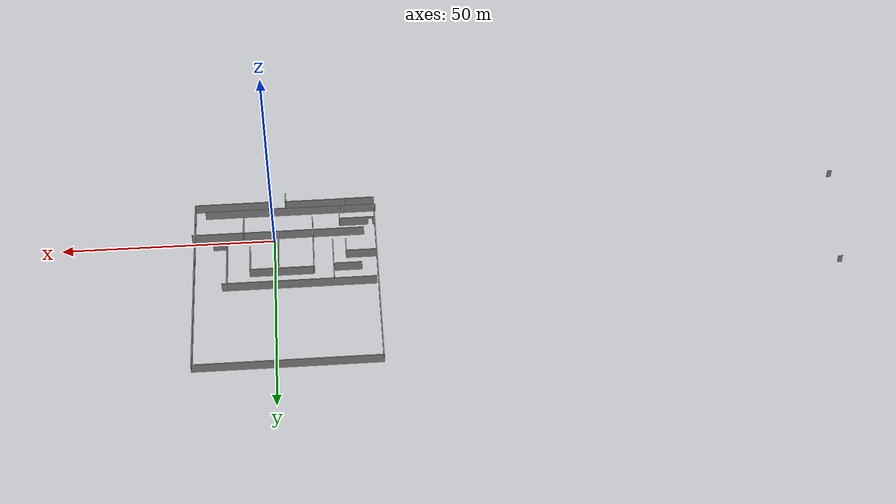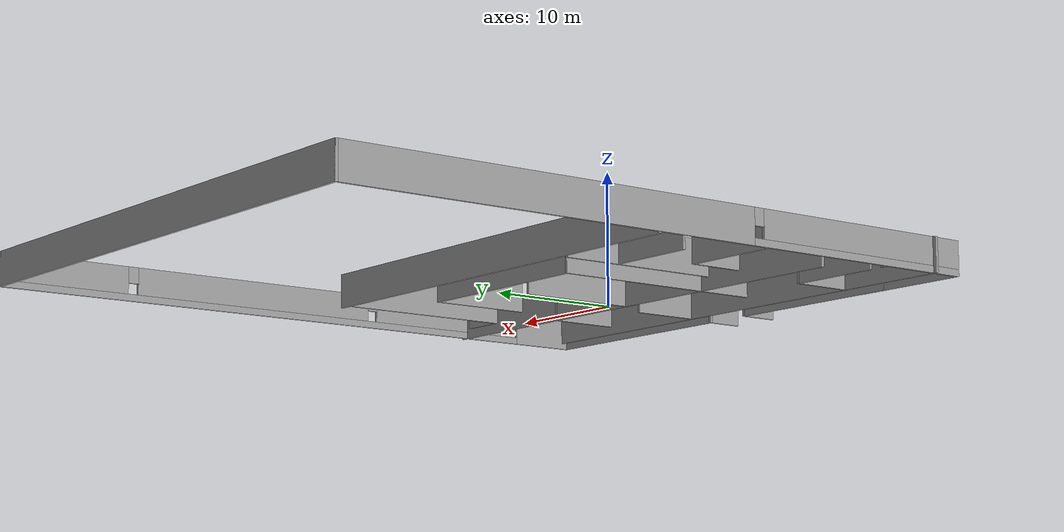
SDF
<?xml version='1.0'?>
<sdf version='1.4'>
  <model name='Gmapping-World'>
    <link name='Door_0'>
      <collision name='Door_0_Collision'>
        <geometry>
          <box>
            <size>1 0.2 2</size>
          </box>
        </geometry>
        <pose>0 0 1 0 -0 0</pose>
      </collision>
      <visual name='Door_0_Visual'>
        <pose>0 0 1 0 -0 0</pose>
        <geometry>
          <box>
            <size>1 0.2 2</size>
          </box>
        </geometry>
        <material>
          <script>
            <uri>file://media/materials/scripts/gazebo.material</uri>
            <name>Gazebo/Grey</name>
          </script>
        </material>
      </visual>
      <velocity_decay>
        <linear>0</linear>
        <angular>0</angular>
      </velocity_decay>
      <pose>-136.279 -12.4806 0 0 -0 0</pose>
    </link>
    <link name='Door_1'>
      <collision name='Door_1_Collision'>
        <geometry>
          <box>
            <size>1 0.2 2</size>
          </box>
        </geometry>
        <pose>0 0 1 0 -0 0</pose>
      </collision>
      <visual name='Door_1_Visual'>
        <pose>0 0 1 0 -0 0</pose>
        <geometry>
          <box>
            <size>1 0.2 2</size>
          </box>
        </geometry>
        <material>
          <script>
            <uri>file://media/materials/scripts/gazebo.material</uri>
            <name>Gazebo/Grey</name>
          </script>
        </material>
      </visual>
      <velocity_decay>
        <linear>0</linear>
        <angular>0</angular>
      </velocity_decay>
      <pose>-132.271 16.2455 0 0 -0 0</pose>
    </link>
    <link name='Wall_11'>
      <collision name='Wall_11_Collision'>
        <geometry>
          <box>
            <size>14.5114 0.2 2.5</size>
          </box>
        </geometry>
        <pose>0 0 1.25 0 -0 0</pose>
      </collision>
      <visual name='Wall_11_Visual'>
        <pose>0 0 1.25 0 -0 0</pose>
        <geometry>
          <box>
            <size>14.5114 0.2 2.5</size>
          </box>
        </geometry>
        <material>
          <script>
            <uri>file://media/materials/scripts/gazebo.material</uri>
            <name>Gazebo/Grey</name>
          </script>
        </material>
      </visual>
      <velocity_decay>
        <linear>0</linear>
        <angular>0</angular>
      </velocity_decay>
      <pose>-9.95283 -10.8803 0 0 -0 0</pose>
    </link>
    <link name='Wall_12'>
      <collision name='Wall_12_Collision'>
        <geometry>
          <box>
            <size>2.93125 0.2 2.5</size>
          </box>
        </geometry>
        <pose>0 0 1.25 0 -0 0</pose>
      </collision>
      <visual name='Wall_12_Visual'>
        <pose>0 0 1.25 0 -0 0</pose>
        <geometry>
          <box>
            <size>2.93125 0.2 2.5</size>
          </box>
        </geometry>
        <material>
          <script>
            <uri>file://media/materials/scripts/gazebo.material</uri>
            <name>Gazebo/Grey</name>
          </script>
        </material>
      </visual>
      <velocity_decay>
        <linear>0</linear>
        <angular>0</angular>
      </velocity_decay>
      <pose>-2.79714 -12.2459 0 0 0 -1.5708</pose>
    </link>
    <link name='Wall_13'>
      <collision name='Wall_13_Collision'>
        <geometry>
          <box>
            <size>0.21 0.2 2.5</size>
          </box>
        </geometry>
        <pose>0 0 1.25 0 -0 0</pose>
      </collision>
      <visual name='Wall_13_Visual'>
        <pose>0 0 1.25 0 -0 0</pose>
        <geometry>
          <box>
            <size>0.21 0.2 2.5</size>
          </box>
        </geometry>
        <material>
          <script>
            <uri>file://media/materials/scripts/gazebo.material</uri>
            <name>Gazebo/Grey</name>
          </script>
        </material>
      </visual>
      <velocity_decay>
        <linear>0</linear>
        <angular>0</angular>
      </velocity_decay>
      <pose>-2.79214 -13.6115 0 0 -0 0</pose>
    </link>
    <link name='Wall_15'>
      <collision name='Wall_15_Collision'>
        <geometry>
          <box>
            <size>2.82063 0.2 2.5</size>
          </box>
        </geometry>
        <pose>0 0 1.25 0 -0 0</pose>
      </collision>
      <visual name='Wall_15_Visual'>
        <pose>0 0 1.25 0 -0 0</pose>
        <geometry>
          <box>
            <size>2.82063 0.2 2.5</size>
          </box>
        </geometry>
        <material>
          <script>
            <uri>file://media/materials/scripts/gazebo.material</uri>
            <name>Gazebo/Grey</name>
          </script>
        </material>
      </visual>
      <velocity_decay>
        <linear>0</linear>
        <angular>0</angular>
      </velocity_decay>
      <pose>1.07123 -12.2623 0 0 -0 1.5708</pose>
    </link>
    <link name='Wall_16'>
      <collision name='Wall_16_Collision'>
        <geometry>
          <box>
            <size>17.8893 0.2 2.5</size>
          </box>
        </geometry>
        <pose>0 0 1.25 0 -0 0</pose>
      </collision>
      <visual name='Wall_16_Visual'>
        <pose>0 0 1.25 0 -0 0</pose>
        <geometry>
          <box>
            <size>17.8893 0.2 2.5</size>
          </box>
        </geometry>
        <material>
          <script>
            <uri>file://media/materials/scripts/gazebo.material</uri>
            <name>Gazebo/Grey</name>
          </script>
        </material>
      </visual>
      <velocity_decay>
        <linear>0</linear>
        <angular>0</angular>
      </velocity_decay>
      <pose>9.91586 -10.952 0 0 -0 0</pose>
    </link>
    <link name='Wall_17'>
      <pose>18.7605 14.1542 0 0 -0 1.5708</pose>
      <visual name='Wall_17_Visual_0'>
        <pose>-22.5576 0 1.25 0 -0 0</pose>
        <geometry>
          <box>
            <size>5.29723 0.2 2.5</size>
          </box>
        </geometry>
        <material>
          <script>
            <uri>file://media/materials/scripts/gazebo.material</uri>
            <name>Gazebo/Grey</name>
          </script>
        </material>
      </visual>
      <collision name='Wall_17_Collision_0'>
        <geometry>
          <box>
            <size>5.29723 0.2 2.5</size>
          </box>
        </geometry>
        <pose>-22.5576 0 1.25 0 -0 0</pose>
      </collision>
      <visual name='Wall_17_Visual_1'>
        <pose>2.64861 0 0.25 0 -0 0</pose>
        <geometry>
          <box>
            <size>45.1152 0.2 0.5</size>
          </box>
        </geometry>
        <material>
          <script>
            <uri>file://media/materials/scripts/gazebo.material</uri>
            <name>Gazebo/Grey</name>
          </script>
        </material>
      </visual>
      <collision name='Wall_17_Collision_1'>
        <geometry>
          <box>
            <size>45.1152 0.2 0.5</size>
          </box>
        </geometry>
        <pose>2.64861 0 0.25 0 -0 0</pose>
      </collision>
      <visual name='Wall_17_Visual_2'>
        <pose>-12.7172 0 1.5 0 -0 0</pose>
        <geometry>
          <box>
            <size>12.7836 0.2 2</size>
          </box>
        </geometry>
        <material>
          <script>
            <uri>file://media/materials/scripts/gazebo.material</uri>
            <name>Gazebo/Grey</name>
          </script>
        </material>
      </visual>
      <collision name='Wall_17_Collision_2'>
        <geometry>
          <box>
            <size>12.7836 0.2 2</size>
          </box>
        </geometry>
        <pose>-12.7172 0 1.5 0 -0 0</pose>
      </collision>
      <visual name='Wall_17_Visual_3'>
        <pose>4.42941 0 1.5 0 -0 0</pose>
        <geometry>
          <box>
            <size>19.9095 0.2 2</size>
          </box>
        </geometry>
        <material>
          <script>
            <uri>file://media/materials/scripts/gazebo.material</uri>
            <name>Gazebo/Grey</name>
          </script>
        </material>
      </visual>
      <collision name='Wall_17_Collision_3'>
        <geometry>
          <box>
            <size>19.9095 0.2 2</size>
          </box>
        </geometry>
        <pose>4.42941 0 1.5 0 -0 0</pose>
      </collision>
      <visual name='Wall_17_Visual_4'>
        <pose>20.1952 0 1.5 0 -0 0</pose>
        <geometry>
          <box>
            <size>10.0221 0.2 2</size>
          </box>
        </geometry>
        <material>
          <script>
            <uri>file://media/materials/scripts/gazebo.material</uri>
            <name>Gazebo/Grey</name>
          </script>
        </material>
      </visual>
      <collision name='Wall_17_Collision_4'>
        <geometry>
          <box>
            <size>10.0221 0.2 2</size>
          </box>
        </geometry>
        <pose>20.1952 0 1.5 0 -0 0</pose>
      </collision>
      <visual name='Wall_17_Visual_5'>
        <pose>-19.509 0 1.9 0 -0 0</pose>
        <geometry>
          <box>
            <size>0.8 0.2 1.2</size>
          </box>
        </geometry>
        <material>
          <script>
            <uri>file://media/materials/scripts/gazebo.material</uri>
            <name>Gazebo/Grey</name>
          </script>
        </material>
      </visual>
      <collision name='Wall_17_Collision_5'>
        <geometry>
          <box>
            <size>0.8 0.2 1.2</size>
          </box>
        </geometry>
        <pose>-19.509 0 1.9 0 -0 0</pose>
      </collision>
      <visual name='Wall_17_Visual_6'>
        <pose>-5.92533 0 1.9 0 -0 0</pose>
        <geometry>
          <box>
            <size>0.8 0.2 1.2</size>
          </box>
        </geometry>
        <material>
          <script>
            <uri>file://media/materials/scripts/gazebo.material</uri>
            <name>Gazebo/Grey</name>
          </script>
        </material>
      </visual>
      <collision name='Wall_17_Collision_6'>
        <geometry>
          <box>
            <size>0.8 0.2 1.2</size>
          </box>
        </geometry>
        <pose>-5.92533 0 1.9 0 -0 0</pose>
      </collision>
      <visual name='Wall_17_Visual_7'>
        <pose>14.7841 0 1.9 0 -0 0</pose>
        <geometry>
          <box>
            <size>0.8 0.2 1.2</size>
          </box>
        </geometry>
        <material>
          <script>
            <uri>file://media/materials/scripts/gazebo.material</uri>
            <name>Gazebo/Grey</name>
          </script>
        </material>
      </visual>
      <collision name='Wall_17_Collision_7'>
        <geometry>
          <box>
            <size>0.8 0.2 1.2</size>
          </box>
        </geometry>
        <pose>14.7841 0 1.9 0 -0 0</pose>
      </collision>
    </link>
    <link name='Wall_18'>
      <collision name='Wall_18_Collision'>
        <geometry>
          <box>
            <size>42.9412 0.2 2.5</size>
          </box>
        </geometry>
        <pose>0 0 1.25 0 -0 0</pose>
      </collision>
      <visual name='Wall_18_Visual'>
        <pose>0 0 1.25 0 -0 0</pose>
        <geometry>
          <box>
            <size>42.9412 0.2 2.5</size>
          </box>
        </geometry>
        <material>
          <script>
            <uri>file://media/materials/scripts/gazebo.material</uri>
            <name>Gazebo/Grey</name>
          </script>
        </material>
      </visual>
      <velocity_decay>
        <linear>0</linear>
        <angular>0</angular>
      </velocity_decay>
      <pose>-2.61009 39.2604 0 0 -0 3.14159</pose>
    </link>
    <link name='Wall_19'>
      <pose>-23.9807 14.1641 0 0 0 -1.5708</pose>
      <visual name='Wall_19_Visual_0'>
        <pose>-9.38521 0 1.25 0 -0 0</pose>
        <geometry>
          <box>
            <size>31.6223 0.2 2.5</size>
          </box>
        </geometry>
        <material>
          <script>
            <uri>file://media/materials/scripts/gazebo.material</uri>
            <name>Gazebo/Grey</name>
          </script>
        </material>
      </visual>
      <collision name='Wall_19_Collision_0'>
        <geometry>
          <box>
            <size>31.6223 0.2 2.5</size>
          </box>
        </geometry>
        <pose>-9.38521 0 1.25 0 -0 0</pose>
      </collision>
      <visual name='Wall_19_Visual_1'>
        <pose>15.8111 0 0.25 0 -0 0</pose>
        <geometry>
          <box>
            <size>18.7704 0.2 0.5</size>
          </box>
        </geometry>
        <material>
          <script>
            <uri>file://media/materials/scripts/gazebo.material</uri>
            <name>Gazebo/Grey</name>
          </script>
        </material>
      </visual>
      <collision name='Wall_19_Collision_1'>
        <geometry>
          <box>
            <size>18.7704 0.2 0.5</size>
          </box>
        </geometry>
        <pose>15.8111 0 0.25 0 -0 0</pose>
      </collision>
      <visual name='Wall_19_Visual_2'>
        <pose>16.2111 0 1.5 0 -0 0</pose>
        <geometry>
          <box>
            <size>17.9704 0.2 2</size>
          </box>
        </geometry>
        <material>
          <script>
            <uri>file://media/materials/scripts/gazebo.material</uri>
            <name>Gazebo/Grey</name>
          </script>
        </material>
      </visual>
      <collision name='Wall_19_Collision_2'>
        <geometry>
          <box>
            <size>17.9704 0.2 2</size>
          </box>
        </geometry>
        <pose>16.2111 0 1.5 0 -0 0</pose>
      </collision>
      <visual name='Wall_19_Visual_3'>
        <pose>6.82594 0 1.9 0 -0 0</pose>
        <geometry>
          <box>
            <size>0.8 0.2 1.2</size>
          </box>
        </geometry>
        <material>
          <script>
            <uri>file://media/materials/scripts/gazebo.material</uri>
            <name>Gazebo/Grey</name>
          </script>
        </material>
      </visual>
      <collision name='Wall_19_Collision_3'>
        <geometry>
          <box>
            <size>0.8 0.2 1.2</size>
          </box>
        </geometry>
        <pose>6.82594 0 1.9 0 -0 0</pose>
      </collision>
    </link>
    <link name='Wall_20'>
      <collision name='Wall_20_Collision'>
        <geometry>
          <box>
            <size>9.16297 0.2 2.5</size>
          </box>
        </geometry>
        <pose>0 0 1.25 0 -0 0</pose>
      </collision>
      <visual name='Wall_20_Visual'>
        <pose>0 0 1.25 0 -0 0</pose>
        <geometry>
          <box>
            <size>9.16297 0.2 2.5</size>
          </box>
        </geometry>
        <material>
          <script>
            <uri>file://media/materials/scripts/gazebo.material</uri>
            <name>Gazebo/Grey</name>
          </script>
        </material>
      </visual>
      <velocity_decay>
        <linear>0</linear>
        <angular>0</angular>
      </velocity_decay>
      <pose>-19.4992 -10.9322 0 0 -0 0</pose>
    </link>
    <link name='Wall_23'>
      <collision name='Wall_23_Collision'>
        <geometry>
          <box>
            <size>40.6614 0.2 2.5</size>
          </box>
        </geometry>
        <pose>0 0 1.25 0 -0 0</pose>
      </collision>
      <visual name='Wall_23_Visual'>
        <pose>0 0 1.25 0 -0 0</pose>
        <geometry>
          <box>
            <size>40.6614 0.2 2.5</size>
          </box>
        </geometry>
        <material>
          <script>
            <uri>file://media/materials/scripts/gazebo.material</uri>
            <name>Gazebo/Grey</name>
          </script>
        </material>
      </visual>
      <velocity_decay>
        <linear>0</linear>
        <angular>0</angular>
      </velocity_decay>
      <pose>-4.00605 -8.62745 0 0 -0 0</pose>
    </link>
    <link name='Wall_25'>
      <collision name='Wall_25_Collision'>
        <geometry>
          <box>
            <size>40.6614 0.2 2.5</size>
          </box>
        </geometry>
        <pose>0 0 1.25 0 -0 0</pose>
      </collision>
      <visual name='Wall_25_Visual'>
        <pose>0 0 1.25 0 -0 0</pose>
        <geometry>
          <box>
            <size>40.6614 0.2 2.5</size>
          </box>
        </geometry>
        <material>
          <script>
            <uri>file://media/materials/scripts/gazebo.material</uri>
            <name>Gazebo/Grey</name>
          </script>
        </material>
      </visual>
      <velocity_decay>
        <linear>0</linear>
        <angular>0</angular>
      </velocity_decay>
      <pose>-0.933032 -0.944906 0 0 -0 3.14159</pose>
    </link>
    <link name='Wall_27'>
      <collision name='Wall_27_Collision'>
        <geometry>
          <box>
            <size>5.3217 0.2 2.5</size>
          </box>
        </geometry>
        <pose>0 0 1.25 0 -0 0</pose>
      </collision>
      <visual name='Wall_27_Visual'>
        <pose>0 0 1.25 0 -0 0</pose>
        <geometry>
          <box>
            <size>5.3217 0.2 2.5</size>
          </box>
        </geometry>
        <material>
          <script>
            <uri>file://media/materials/scripts/gazebo.material</uri>
            <name>Gazebo/Grey</name>
          </script>
        </material>
      </visual>
      <velocity_decay>
        <linear>0</linear>
        <angular>0</angular>
      </velocity_decay>
      <pose>7.26169 -3.50576 0 0 0 -1.5708</pose>
    </link>
    <link name='Wall_29'>
      <collision name='Wall_29_Collision'>
        <geometry>
          <box>
            <size>5.06561 0.2 2.5</size>
          </box>
        </geometry>
        <pose>0 0 1.25 0 -0 0</pose>
      </collision>
      <visual name='Wall_29_Visual'>
        <pose>0 0 1.25 0 -0 0</pose>
        <geometry>
          <box>
            <size>5.06561 0.2 2.5</size>
          </box>
        </geometry>
        <material>
          <script>
            <uri>file://media/materials/scripts/gazebo.material</uri>
            <name>Gazebo/Grey</name>
          </script>
        </material>
      </visual>
      <velocity_decay>
        <linear>0</linear>
        <angular>0</angular>
      </velocity_decay>
      <pose>0.603478 -5.93856 0 0 -0 1.5708</pose>
    </link>
    <link name='Wall_47'>
      <collision name='Wall_47_Collision'>
        <geometry>
          <box>
            <size>35.7958 0.2 2.5</size>
          </box>
        </geometry>
        <pose>0 0 1.25 0 -0 0</pose>
      </collision>
      <visual name='Wall_47_Visual'>
        <pose>0 0 1.25 0 -0 0</pose>
        <geometry>
          <box>
            <size>35.7958 0.2 2.5</size>
          </box>
        </geometry>
        <material>
          <script>
            <uri>file://media/materials/scripts/gazebo.material</uri>
            <name>Gazebo/Grey</name>
          </script>
        </material>
      </visual>
      <velocity_decay>
        <linear>0</linear>
        <angular>0</angular>
      </velocity_decay>
      <pose>-5.6706 15.1884 0 0 -0 0</pose>
    </link>
    <link name='Wall_49'>
      <collision name='Wall_49_Collision'>
        <geometry>
          <box>
            <size>12.236 0.2 2.5</size>
          </box>
        </geometry>
        <pose>0 0 1.25 0 -0 0</pose>
      </collision>
      <visual name='Wall_49_Visual'>
        <pose>0 0 1.25 0 -0 0</pose>
        <geometry>
          <box>
            <size>12.236 0.2 2.5</size>
          </box>
        </geometry>
        <material>
          <script>
            <uri>file://media/materials/scripts/gazebo.material</uri>
            <name>Gazebo/Grey</name>
          </script>
        </material>
      </visual>
      <velocity_decay>
        <linear>0</linear>
        <angular>0</angular>
      </velocity_decay>
      <pose>-13.7373 8.65828 0 0 0 -1.5708</pose>
    </link>
    <link name='Wall_51'>
      <collision name='Wall_51_Collision'>
        <geometry>
          <box>
            <size>7.11429 0.2 2.5</size>
          </box>
        </geometry>
        <pose>0 0 1.25 0 -0 0</pose>
      </collision>
      <visual name='Wall_51_Visual'>
        <pose>0 0 1.25 0 -0 0</pose>
        <geometry>
          <box>
            <size>7.11429 0.2 2.5</size>
          </box>
        </geometry>
        <material>
          <script>
            <uri>file://media/materials/scripts/gazebo.material</uri>
            <name>Gazebo/Grey</name>
          </script>
        </material>
      </visual>
      <velocity_decay>
        <linear>0</linear>
        <angular>0</angular>
      </velocity_decay>
      <pose>-20.2674 6.48156 0 0 -0 0</pose>
    </link>
    <link name='Wall_52'>
      <collision name='Wall_52_Collision'>
        <geometry>
          <box>
            <size>4.04127 0.2 2.5</size>
          </box>
        </geometry>
        <pose>0 0 1.25 0 -0 0</pose>
      </collision>
      <visual name='Wall_52_Visual'>
        <pose>0 0 1.25 0 -0 0</pose>
        <geometry>
          <box>
            <size>4.04127 0.2 2.5</size>
          </box>
        </geometry>
        <material>
          <script>
            <uri>file://media/materials/scripts/gazebo.material</uri>
            <name>Gazebo/Grey</name>
          </script>
        </material>
      </visual>
      <velocity_decay>
        <linear>0</linear>
        <angular>0</angular>
      </velocity_decay>
      <pose>-16.8103 4.56092 0 0 0 -1.5708</pose>
    </link>
    <link name='Wall_54'>
      <collision name='Wall_54_Collision'>
        <geometry>
          <box>
            <size>12.4921 0.2 2.5</size>
          </box>
        </geometry>
        <pose>0 0 1.25 0 -0 0</pose>
      </collision>
      <visual name='Wall_54_Visual'>
        <pose>0 0 1.25 0 -0 0</pose>
        <geometry>
          <box>
            <size>12.4921 0.2 2.5</size>
          </box>
        </geometry>
        <material>
          <script>
            <uri>file://media/materials/scripts/gazebo.material</uri>
            <name>Gazebo/Grey</name>
          </script>
        </material>
      </visual>
      <velocity_decay>
        <linear>0</linear>
        <angular>0</angular>
      </velocity_decay>
      <pose>-9.12775 4.94505 0 0 -0 1.5708</pose>
    </link>
    <link name='Wall_55'>
      <collision name='Wall_55_Collision'>
        <geometry>
          <box>
            <size>15.0529 0.2 2.5</size>
          </box>
        </geometry>
        <pose>0 0 1.25 0 -0 0</pose>
      </collision>
      <visual name='Wall_55_Visual'>
        <pose>0 0 1.25 0 -0 0</pose>
        <geometry>
          <box>
            <size>15.0529 0.2 2.5</size>
          </box>
        </geometry>
        <material>
          <script>
            <uri>file://media/materials/scripts/gazebo.material</uri>
            <name>Gazebo/Grey</name>
          </script>
        </material>
      </visual>
      <velocity_decay>
        <linear>0</linear>
        <angular>0</angular>
      </velocity_decay>
      <pose>-1.70129 11.0911 0 0 -0 0</pose>
    </link>
    <link name='Wall_56'>
      <collision name='Wall_56_Collision'>
        <geometry>
          <box>
            <size>7.57647 0.2 2.5</size>
          </box>
        </geometry>
        <pose>0 0 1.25 0 -0 0</pose>
      </collision>
      <visual name='Wall_56_Visual'>
        <pose>0 0 1.25 0 -0 0</pose>
        <geometry>
          <box>
            <size>7.57647 0.2 2.5</size>
          </box>
        </geometry>
        <material>
          <script>
            <uri>file://media/materials/scripts/gazebo.material</uri>
            <name>Gazebo/Grey</name>
          </script>
        </material>
      </visual>
      <velocity_decay>
        <linear>0</linear>
        <angular>0</angular>
      </velocity_decay>
      <pose>5.72518 7.40285 0 0 0 -1.5708</pose>
    </link>
    <link name='Wall_59'>
      <collision name='Wall_59_Collision'>
        <geometry>
          <box>
            <size>13.1156 0.2 2.5</size>
          </box>
        </geometry>
        <pose>0 0 1.25 0 -0 0</pose>
      </collision>
      <visual name='Wall_59_Visual'>
        <pose>0 0 1.25 0 -0 0</pose>
        <geometry>
          <box>
            <size>13.1156 0.2 2.5</size>
          </box>
        </geometry>
        <material>
          <script>
            <uri>file://media/materials/scripts/gazebo.material</uri>
            <name>Gazebo/Grey</name>
          </script>
        </material>
      </visual>
      <velocity_decay>
        <linear>0</linear>
        <angular>0</angular>
      </velocity_decay>
      <pose>11.1367 8.45158 0 0 0 -1.5708</pose>
    </link>
    <link name='Wall_60'>
      <collision name='Wall_60_Collision'>
        <geometry>
          <box>
            <size>3.31756 0.2 2.5</size>
          </box>
        </geometry>
        <pose>0 0 1.25 0 -0 0</pose>
      </collision>
      <visual name='Wall_60_Visual'>
        <pose>0 0 1.25 0 -0 0</pose>
        <geometry>
          <box>
            <size>3.31756 0.2 2.5</size>
          </box>
        </geometry>
        <material>
          <script>
            <uri>file://media/materials/scripts/gazebo.material</uri>
            <name>Gazebo/Grey</name>
          </script>
        </material>
      </visual>
      <velocity_decay>
        <linear>0</linear>
        <angular>0</angular>
      </velocity_decay>
      <pose>12.6955 1.99379 0 0 -0 0</pose>
    </link>
    <link name='Wall_62'>
      <collision name='Wall_62_Collision'>
        <geometry>
          <box>
            <size>6.43511 0.2 2.5</size>
          </box>
        </geometry>
        <pose>0 0 1.25 0 -0 0</pose>
      </collision>
      <visual name='Wall_62_Visual'>
        <pose>0 0 1.25 0 -0 0</pose>
        <geometry>
          <box>
            <size>6.43511 0.2 2.5</size>
          </box>
        </geometry>
        <material>
          <script>
            <uri>file://media/materials/scripts/gazebo.material</uri>
            <name>Gazebo/Grey</name>
          </script>
        </material>
      </visual>
      <velocity_decay>
        <linear>0</linear>
        <angular>0</angular>
      </velocity_decay>
      <pose>-17.144 10.4557 0 0 -0 3.14159</pose>
    </link>
    <link name='Wall_64'>
      <collision name='Wall_64_Collision'>
        <geometry>
          <box>
            <size>8.88462 0.2 2.5</size>
          </box>
        </geometry>
        <pose>0 0 1.25 0 -0 0</pose>
      </collision>
      <visual name='Wall_64_Visual'>
        <pose>0 0 1.25 0 -0 0</pose>
        <geometry>
          <box>
            <size>8.88462 0.2 2.5</size>
          </box>
        </geometry>
        <material>
          <script>
            <uri>file://media/materials/scripts/gazebo.material</uri>
            <name>Gazebo/Grey</name>
          </script>
        </material>
      </visual>
      <velocity_decay>
        <linear>0</linear>
        <angular>0</angular>
      </velocity_decay>
      <pose>-0.888186 3.66391 0 0 -0 1.5708</pose>
    </link>
    <link name='Wall_69'>
      <collision name='Wall_69_Collision'>
        <geometry>
          <box>
            <size>4.65365 0.2 2.5</size>
          </box>
        </geometry>
        <pose>0 0 1.25 0 -0 0</pose>
      </collision>
      <visual name='Wall_69_Visual'>
        <pose>0 0 1.25 0 -0 0</pose>
        <geometry>
          <box>
            <size>4.65365 0.2 2.5</size>
          </box>
        </geometry>
        <material>
          <script>
            <uri>file://media/materials/scripts/gazebo.material</uri>
            <name>Gazebo/Grey</name>
          </script>
        </material>
      </visual>
      <velocity_decay>
        <linear>0</linear>
        <angular>0</angular>
      </velocity_decay>
      <pose>-15.5852 -6.46815 0 0 -0 1.5708</pose>
    </link>
    <link name='Wall_70'>
      <pose>-19.7049 -4.24132 0 0 -0 3.14159</pose>
      <visual name='Wall_70_Visual_0'>
        <pose>-0.745364 0 1.25 0 -0 0</pose>
        <geometry>
          <box>
            <size>6.94852 0.2 2.5</size>
          </box>
        </geometry>
        <material>
          <script>
            <uri>file://media/materials/scripts/gazebo.material</uri>
            <name>Gazebo/Grey</name>
          </script>
        </material>
      </visual>
      <collision name='Wall_70_Collision_0'>
        <geometry>
          <box>
            <size>6.94852 0.2 2.5</size>
          </box>
        </geometry>
        <pose>-0.745364 0 1.25 0 -0 0</pose>
      </collision>
      <visual name='Wall_70_Visual_1'>
        <pose>3.97426 0 1.25 0 -0 0</pose>
        <geometry>
          <box>
            <size>0.490728 0.2 2.5</size>
          </box>
        </geometry>
        <material>
          <script>
            <uri>file://media/materials/scripts/gazebo.material</uri>
            <name>Gazebo/Grey</name>
          </script>
        </material>
      </visual>
      <collision name='Wall_70_Collision_1'>
        <geometry>
          <box>
            <size>0.490728 0.2 2.5</size>
          </box>
        </geometry>
        <pose>3.97426 0 1.25 0 -0 0</pose>
      </collision>
      <visual name='Wall_70_Visual_2'>
        <pose>3.2289 0 2.25 0 -0 0</pose>
        <geometry>
          <box>
            <size>1 0.2 0.5</size>
          </box>
        </geometry>
        <material>
          <script>
            <uri>file://media/materials/scripts/gazebo.material</uri>
            <name>Gazebo/Grey</name>
          </script>
        </material>
      </visual>
      <collision name='Wall_70_Collision_2'>
        <geometry>
          <box>
            <size>1 0.2 0.5</size>
          </box>
        </geometry>
        <pose>3.2289 0 2.25 0 -0 0</pose>
      </collision>
    </link>
    <link name='Wall_73'>
      <collision name='Wall_73_Collision'>
        <geometry>
          <box>
            <size>4.43097 0.2 2.5</size>
          </box>
        </geometry>
        <pose>0 0 1.25 0 -0 0</pose>
      </collision>
      <visual name='Wall_73_Visual'>
        <pose>0 0 1.25 0 -0 0</pose>
        <geometry>
          <box>
            <size>4.43097 0.2 2.5</size>
          </box>
        </geometry>
        <material>
          <script>
            <uri>file://media/materials/scripts/gazebo.material</uri>
            <name>Gazebo/Grey</name>
          </script>
        </material>
      </visual>
      <velocity_decay>
        <linear>0</linear>
        <angular>0</angular>
      </velocity_decay>
      <pose>-9.12744 -3.01657 0 0 0 -1.5708</pose>
    </link>
    <static>1</static>
  </model>
</sdf>
